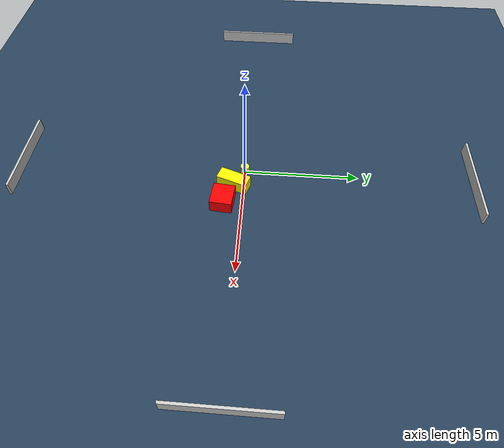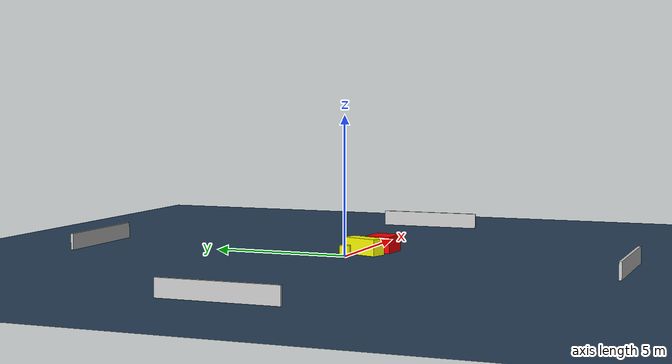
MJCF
<?xml version="1.0" ?>
<mujoco model="generated_environment">
  <option timestep="0.01" integrator="RK4" cone="elliptic"/>
  <default>
    <geom density="1"/>
  </default>
  <asset>
    <texture builtin="gradient" height="3072" name="skybox" rgb1="0.3 0.5 0.7" rgb2="0 0 0" type="skybox" width="512"/>
    <texture builtin="checker" height="300" name="groundplane" rgb1="0.2 0.3 0.4" rgb2="0.1 0.2 0.3" type="2d" width="300"/>
    <material name="groundplane" reflectance="0.2" texrepeat="5 5" texture="groundplane"/>
  </asset>
  <worldbody>
    <light dir="0 0 -1" directional="true" pos="0 0 1.5"/>
    <geom condim="3" friction="0.5 0.005 0.001" material="groundplane" name="floor" pos="0 0 0" size="0 0 0.05" type="plane"/>
    <body name="walls">
      <geom name="wall_1" condim="4" pos="-10.0 0.0 0.3" rgba="0.800000011920929 0.800000011920929 0.800000011920929 1.0" size="0.05 2.0 0.3" type="box"/>
      <geom name="wall_2" condim="4" pos="10.0 0.0 0.3" rgba="0.800000011920929 0.800000011920929 0.800000011920929 1.0" size="0.05 2.0 0.3" type="box"/>
      <geom name="wall_3" condim="4" pos="0.0 -10.0 0.3" rgba="0.800000011920929 0.800000011920929 0.800000011920929 1.0" size="2.0 0.05 0.3" type="box"/>
      <geom name="wall_4" condim="4" pos="0.0 10.0 0.3" rgba="0.800000011920929 0.800000011920929 0.800000011920929 1.0" size="2.0 0.05 0.3" type="box"/>
    </body>
    <body name="robot">
      <joint name="joint_x" type="slide" pos="0 0 0" axis="1 0 0"/>
      <joint name="joint_y" type="slide" pos="0 0 0" axis="0 1 0"/>
      <geom name="robot" type="cylinder" pos="0.0 0.0 0.2" size="0.2 0.2 0.0" mass="5.0" friction="1.0 0.005 0.0001" condim="4" rgba="1.0 1.0 0.0 1.0"/>
    </body>
    <body name="obstacle_1_movable">
      <geom name="obstacle_1_movable" condim="4" pos="0.7926439908254843 -0.43121520705164357 0.3" euler="0 0 160.74419415919235" friction="0.0 0.005 0.001" rgba="1.0 1.0 0.0 1.0" size="0.28919546953179365 0.6805860395046932 0.3" type="box" mass="0.1"/>
      <joint type="free"/>
    </body>
    <body name="obstacle_2_static">
      <geom name="obstacle_2_static" condim="4" pos="1.7564544719079054 -0.818425181232489 0.3" euler="0 0 174.80166488584962" friction="0.0 0.005 0.001" rgba="1.0 0.0 0.0 1.0" size="0.5079536452380558 0.46800352056665784 0.3" type="box"/>
    </body>
  </worldbody>
  <actuator>
    <motor name="actuator_x" joint="joint_x" gear="1" ctrlrange="-1 1"/>
    <motor name="actuator_y" joint="joint_y" gear="1" ctrlrange="-1 1"/>
  </actuator>
</mujoco>
